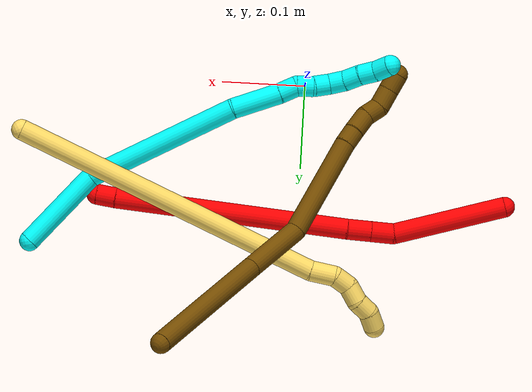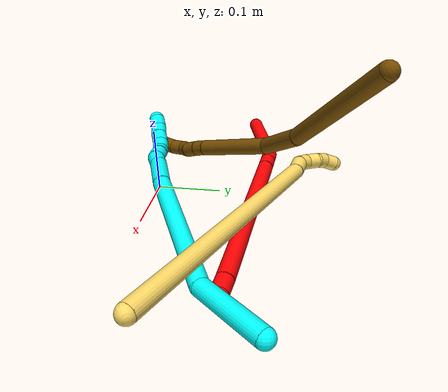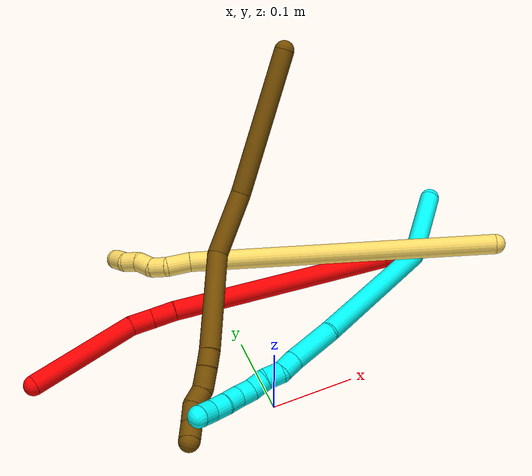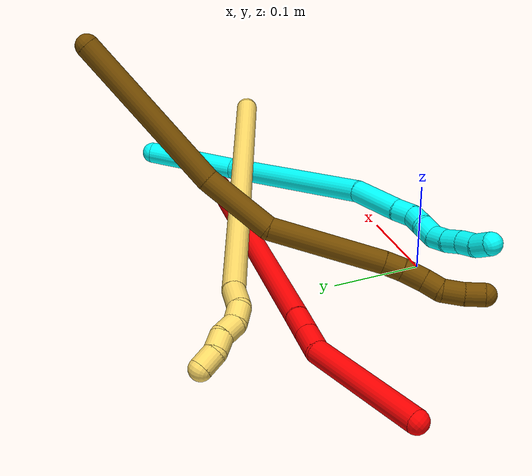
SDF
<sdf version="1.7">
 <world name="default">
  <model name="2">
   <static>0</static>
   <link name="2">
    <collision name="collision-cylinder-e_1_1_4">
     <pose>-0.010004 -0.00013 0.005987 0.021658 -1.03143 -0.012278</pose>
     <geometry><cylinder><radius>0.0125</radius><length>0.02332</length></cylinder></geometry>
     <surface>
      <friction><ode><mu>1.16</mu><mu2>1.16</mu2><slip1>0</slip1><slip2>0</slip2></ode></friction>
      <contact><ode><kp>1e+06</kp><kd>1</kd><max_vel>0</max_vel><min_depth>0.001</min_depth></ode></contact>
     </surface>
    </collision>
    <visual name="visual-cylinder-e_1_1_4">
     <pose>-0.010004 -0.00013 0.005987 0.021658 -1.03143 -0.012278</pose>
     <geometry><cylinder><radius>0.0125</radius><length>0.02332</length></cylinder></geometry>
     <material><ambient>1 0 0 1</ambient></material>
    </visual>
    <collision name="collision-cylinder-e_2_4_5">
     <pose>-0.135455 -0.000983 0.093216 0.008907 -0.957558 -0.004624</pose>
     <geometry><cylinder><radius>0.0125</radius><length>0.282338</length></cylinder></geometry>
     <surface>
      <friction><ode><mu>1.16</mu><mu2>1.16</mu2><slip1>0</slip1><slip2>0</slip2></ode></friction>
      <contact><ode><kp>1e+06</kp><kd>1</kd><max_vel>0</max_vel><min_depth>0.001</min_depth></ode></contact>
     </surface>
    </collision>
    <visual name="visual-cylinder-e_2_4_5">
     <pose>-0.135455 -0.000983 0.093216 0.008907 -0.957558 -0.004624</pose>
     <geometry><cylinder><radius>0.0125</radius><length>0.282338</length></cylinder></geometry>
     <material><ambient>1 0 0 1</ambient></material>
    </visual>
    <collision name="collision-cylinder-e_3_5_6">
     <pose>-0.261729 -0.002444 0.183689 0.079695 -0.863233 -0.036721</pose>
     <geometry><cylinder><radius>0.0125</radius><length>0.028495</length></cylinder></geometry>
     <surface>
      <friction><ode><mu>1.16</mu><mu2>1.16</mu2><slip1>0</slip1><slip2>0</slip2></ode></friction>
      <contact><ode><kp>1e+06</kp><kd>1</kd><max_vel>0</max_vel><min_depth>0.001</min_depth></ode></contact>
     </surface>
    </collision>
    <visual name="visual-cylinder-e_3_5_6">
     <pose>-0.261729 -0.002444 0.183689 0.079695 -0.863233 -0.036721</pose>
     <geometry><cylinder><radius>0.0125</radius><length>0.028495</length></cylinder></geometry>
     <material><ambient>1 0 0 1</ambient></material>
    </visual>
    <collision name="collision-cylinder-e_4_6_7">
     <pose>-0.283307 -0.003819 0.201951 0.070475 -0.870917 -0.032799</pose>
     <geometry><cylinder><radius>0.0125</radius><length>0.028109</length></cylinder></geometry>
     <surface>
      <friction><ode><mu>1.16</mu><mu2>1.16</mu2><slip1>0</slip1><slip2>0</slip2></ode></friction>
      <contact><ode><kp>1e+06</kp><kd>1</kd><max_vel>0</max_vel><min_depth>0.001</min_depth></ode></contact>
     </surface>
    </collision>
    <visual name="visual-cylinder-e_4_6_7">
     <pose>-0.283307 -0.003819 0.201951 0.070475 -0.870917 -0.032799</pose>
     <geometry><cylinder><radius>0.0125</radius><length>0.028109</length></cylinder></geometry>
     <material><ambient>1 0 0 1</ambient></material>
    </visual>
    <collision name="collision-cylinder-e_5_7_2">
     <pose>-0.336003 0.01205 0.26305 -0.306984 -0.654873 0.105001</pose>
     <geometry><cylinder><radius>0.0125</radius><length>0.137739</length></cylinder></geometry>
     <surface>
      <friction><ode><mu>1.16</mu><mu2>1.16</mu2><slip1>0</slip1><slip2>0</slip2></ode></friction>
      <contact><ode><kp>1e+06</kp><kd>1</kd><max_vel>0</max_vel><min_depth>0.001</min_depth></ode></contact>
     </surface>
    </collision>
    <visual name="visual-cylinder-e_5_7_2">
     <pose>-0.336003 0.01205 0.26305 -0.306984 -0.654873 0.105001</pose>
     <geometry><cylinder><radius>0.0125</radius><length>0.137739</length></cylinder></geometry>
     <material><ambient>1 0 0 1</ambient></material>
    </visual>
    <collision name="collision-sphere-2">
     <pose>-0.377948 0.028556 0.315118 0 -0 0</pose>
     <geometry><sphere><radius>0.0125</radius></sphere></geometry>
     <surface>
      <friction><ode><mu>1.16</mu><mu2>1.16</mu2><slip1>0</slip1><slip2>0</slip2></ode></friction>
      <contact><ode><kp>1e+06</kp><kd>1</kd><max_vel>0</max_vel><min_depth>0.001</min_depth></ode></contact>
     </surface>
    </collision>
    <visual name="visual-sphere-2">
     <pose>-0.377948 0.028556 0.315118 0 -0 0</pose>
     <geometry><sphere><radius>0.0125</radius></sphere></geometry>
     <material><ambient>1 0 0 1</ambient></material>
    </visual>
    <collision name="collision-sphere-7">
     <pose>-0.294057 -0.004456 0.210981 0 -0 0</pose>
     <geometry><sphere><radius>0.0125</radius></sphere></geometry>
     <surface>
      <friction><ode><mu>1.16</mu><mu2>1.16</mu2><slip1>0</slip1><slip2>0</slip2></ode></friction>
      <contact><ode><kp>1e+06</kp><kd>1</kd><max_vel>0</max_vel><min_depth>0.001</min_depth></ode></contact>
     </surface>
    </collision>
    <visual name="visual-sphere-7">
     <pose>-0.294057 -0.004456 0.210981 0 -0 0</pose>
     <geometry><sphere><radius>0.0125</radius></sphere></geometry>
     <material><ambient>1 0 0 1</ambient></material>
    </visual>
    <collision name="collision-sphere-6">
     <pose>-0.272556 -0.003181 0.192921 0 -0 0</pose>
     <geometry><sphere><radius>0.0125</radius></sphere></geometry>
     <surface>
      <friction><ode><mu>1.16</mu><mu2>1.16</mu2><slip1>0</slip1><slip2>0</slip2></ode></friction>
      <contact><ode><kp>1e+06</kp><kd>1</kd><max_vel>0</max_vel><min_depth>0.001</min_depth></ode></contact>
     </surface>
    </collision>
    <visual name="visual-sphere-6">
     <pose>-0.272556 -0.003181 0.192921 0 -0 0</pose>
     <geometry><sphere><radius>0.0125</radius></sphere></geometry>
     <material><ambient>1 0 0 1</ambient></material>
    </visual>
    <collision name="collision-sphere-5">
     <pose>-0.250901 -0.001707 0.174458 0 -0 0</pose>
     <geometry><sphere><radius>0.0125</radius></sphere></geometry>
     <surface>
      <friction><ode><mu>1.16</mu><mu2>1.16</mu2><slip1>0</slip1><slip2>0</slip2></ode></friction>
      <contact><ode><kp>1e+06</kp><kd>1</kd><max_vel>0</max_vel><min_depth>0.001</min_depth></ode></contact>
     </surface>
    </collision>
    <visual name="visual-sphere-5">
     <pose>-0.250901 -0.001707 0.174458 0 -0 0</pose>
     <geometry><sphere><radius>0.0125</radius></sphere></geometry>
     <material><ambient>1 0 0 1</ambient></material>
    </visual>
    <collision name="collision-sphere-1">
     <geometry><sphere><radius>0.0125</radius></sphere></geometry>
     <surface>
      <friction><ode><mu>1.16</mu><mu2>1.16</mu2><slip1>0</slip1><slip2>0</slip2></ode></friction>
      <contact><ode><kp>1e+06</kp><kd>1</kd><max_vel>0</max_vel><min_depth>0.001</min_depth></ode></contact>
     </surface>
    </collision>
    <visual name="visual-sphere-1">
     <geometry><sphere><radius>0.0125</radius></sphere></geometry>
     <material><ambient>1 0 0 1</ambient></material>
    </visual>
    <collision name="collision-sphere-4">
     <pose>-0.020009 -0.000259 0.011974 0 -0 0</pose>
     <geometry><sphere><radius>0.0125</radius></sphere></geometry>
     <surface>
      <friction><ode><mu>1.16</mu><mu2>1.16</mu2><slip1>0</slip1><slip2>0</slip2></ode></friction>
      <contact><ode><kp>1e+06</kp><kd>1</kd><max_vel>0</max_vel><min_depth>0.001</min_depth></ode></contact>
     </surface>
    </collision>
    <visual name="visual-sphere-4">
     <pose>-0.020009 -0.000259 0.011974 0 -0 0</pose>
     <geometry><sphere><radius>0.0125</radius></sphere></geometry>
     <material><ambient>1 0 0 1</ambient></material>
    </visual>
    <inertial>
     <pose>-0.200359 0.002404 0.147202 0 -0 0</pose>
     <mass>0.5</mass>
     <inertia>
      <ixx>0.00125</ixx>
      <ixy>0</ixy>
      <ixz>0</ixz>
      <iyy>0.002126</iyy>
      <iyz>0</iyz>
      <izz>0.001666</izz>
     </inertia>
    </inertial>
   </link>
   <pose>0.243999 0.14398 0.011484 2.22919 0.425446 -0.55017</pose>
  </model>
  <model name="3">
   <static>0</static>
   <link name="3">
    <collision name="collision-cylinder-e_1_1_4">
     <pose>-0.042104 -0.005809 -0.032391 2.96414 -0.907389 -2.7807</pose>
     <geometry><cylinder><radius>0.0125</radius><length>0.106877</length></cylinder></geometry>
     <surface>
      <friction><ode><mu>1.16</mu><mu2>1.16</mu2><slip1>0</slip1><slip2>0</slip2></ode></friction>
      <contact><ode><kp>1e+06</kp><kd>1</kd><max_vel>0</max_vel><min_depth>0.001</min_depth></ode></contact>
     </surface>
    </collision>
    <visual name="visual-cylinder-e_1_1_4">
     <pose>-0.042104 -0.005809 -0.032391 2.96414 -0.907389 -2.7807</pose>
     <geometry><cylinder><radius>0.0125</radius><length>0.106877</length></cylinder></geometry>
     <material><ambient>0.003922 1 0.996078 1</ambient></material>
    </visual>
    <collision name="collision-cylinder-e_2_4_5">
     <pose>-0.169185 -0.047009 -0.09228 2.23135 -1.08545 -1.77828</pose>
     <geometry><cylinder><radius>0.0125</radius><length>0.192143</length></cylinder></geometry>
     <surface>
      <friction><ode><mu>1.16</mu><mu2>1.16</mu2><slip1>0</slip1><slip2>0</slip2></ode></friction>
      <contact><ode><kp>1e+06</kp><kd>1</kd><max_vel>0</max_vel><min_depth>0.001</min_depth></ode></contact>
     </surface>
    </collision>
    <visual name="visual-cylinder-e_2_4_5">
     <pose>-0.169185 -0.047009 -0.09228 2.23135 -1.08545 -1.77828</pose>
     <geometry><cylinder><radius>0.0125</radius><length>0.192143</length></cylinder></geometry>
     <material><ambient>0.003922 1 0.996078 1</ambient></material>
    </visual>
    <collision name="collision-cylinder-e_3_5_6">
     <pose>-0.282561 -0.088749 -0.124495 2.20971 -1.2992 -1.97201</pose>
     <geometry><cylinder><radius>0.0125</radius><length>0.058959</length></cylinder></geometry>
     <surface>
      <friction><ode><mu>1.16</mu><mu2>1.16</mu2><slip1>0</slip1><slip2>0</slip2></ode></friction>
      <contact><ode><kp>1e+06</kp><kd>1</kd><max_vel>0</max_vel><min_depth>0.001</min_depth></ode></contact>
     </surface>
    </collision>
    <visual name="visual-cylinder-e_3_5_6">
     <pose>-0.282561 -0.088749 -0.124495 2.20971 -1.2992 -1.97201</pose>
     <geometry><cylinder><radius>0.0125</radius><length>0.058959</length></cylinder></geometry>
     <material><ambient>0.003922 1 0.996078 1</ambient></material>
    </visual>
    <collision name="collision-cylinder-e_4_6_7">
     <pose>-0.321306 -0.097543 -0.131995 2.4208 -1.22684 -2.15864</pose>
     <geometry><cylinder><radius>0.0125</radius><length>0.021981</length></cylinder></geometry>
     <surface>
      <friction><ode><mu>1.16</mu><mu2>1.16</mu2><slip1>0</slip1><slip2>0</slip2></ode></friction>
      <contact><ode><kp>1e+06</kp><kd>1</kd><max_vel>0</max_vel><min_depth>0.001</min_depth></ode></contact>
     </surface>
    </collision>
    <visual name="visual-cylinder-e_4_6_7">
     <pose>-0.321306 -0.097543 -0.131995 2.4208 -1.22684 -2.15864</pose>
     <geometry><cylinder><radius>0.0125</radius><length>0.021981</length></cylinder></geometry>
     <material><ambient>0.003922 1 0.996078 1</ambient></material>
    </visual>
    <collision name="collision-cylinder-e_5_7_8">
     <pose>-0.341333 -0.101812 -0.133043 0.809394 -1.31631 -0.639607</pose>
     <geometry><cylinder><radius>0.0125</radius><length>0.020004</length></cylinder></geometry>
     <surface>
      <friction><ode><mu>1.16</mu><mu2>1.16</mu2><slip1>0</slip1><slip2>0</slip2></ode></friction>
      <contact><ode><kp>1e+06</kp><kd>1</kd><max_vel>0</max_vel><min_depth>0.001</min_depth></ode></contact>
     </surface>
    </collision>
    <visual name="visual-cylinder-e_5_7_8">
     <pose>-0.341333 -0.101812 -0.133043 0.809394 -1.31631 -0.639607</pose>
     <geometry><cylinder><radius>0.0125</radius><length>0.020004</length></cylinder></geometry>
     <material><ambient>0.003922 1 0.996078 1</ambient></material>
    </visual>
    <collision name="collision-cylinder-e_6_8_9">
     <pose>-0.361018 -0.103352 -0.131238 -1.33773 -1.54178 1.30959</pose>
     <geometry><cylinder><radius>0.0125</radius><length>0.020021</length></cylinder></geometry>
     <surface>
      <friction><ode><mu>1.16</mu><mu2>1.16</mu2><slip1>0</slip1><slip2>0</slip2></ode></friction>
      <contact><ode><kp>1e+06</kp><kd>1</kd><max_vel>0</max_vel><min_depth>0.001</min_depth></ode></contact>
     </surface>
    </collision>
    <visual name="visual-cylinder-e_6_8_9">
     <pose>-0.361018 -0.103352 -0.131238 -1.33773 -1.54178 1.30959</pose>
     <geometry><cylinder><radius>0.0125</radius><length>0.020021</length></cylinder></geometry>
     <material><ambient>0.003922 1 0.996078 1</ambient></material>
    </visual>
    <collision name="collision-cylinder-e_7_9_10">
     <pose>-0.380119 -0.107195 -0.131782 1.7177 -1.14087 -1.27866</pose>
     <geometry><cylinder><radius>0.0125</radius><length>0.020009</length></cylinder></geometry>
     <surface>
      <friction><ode><mu>1.16</mu><mu2>1.16</mu2><slip1>0</slip1><slip2>0</slip2></ode></friction>
      <contact><ode><kp>1e+06</kp><kd>1</kd><max_vel>0</max_vel><min_depth>0.001</min_depth></ode></contact>
     </surface>
    </collision>
    <visual name="visual-cylinder-e_7_9_10">
     <pose>-0.380119 -0.107195 -0.131782 1.7177 -1.14087 -1.27866</pose>
     <geometry><cylinder><radius>0.0125</radius><length>0.020009</length></cylinder></geometry>
     <material><ambient>0.003922 1 0.996078 1</ambient></material>
    </visual>
    <collision name="collision-cylinder-e_8_10_11">
     <pose>-0.397585 -0.116427 -0.134353 1.93732 -0.991975 -1.33392</pose>
     <geometry><cylinder><radius>0.0125</radius><length>0.020003</length></cylinder></geometry>
     <surface>
      <friction><ode><mu>1.16</mu><mu2>1.16</mu2><slip1>0</slip1><slip2>0</slip2></ode></friction>
      <contact><ode><kp>1e+06</kp><kd>1</kd><max_vel>0</max_vel><min_depth>0.001</min_depth></ode></contact>
     </surface>
    </collision>
    <visual name="visual-cylinder-e_8_10_11">
     <pose>-0.397585 -0.116427 -0.134353 1.93732 -0.991975 -1.33392</pose>
     <geometry><cylinder><radius>0.0125</radius><length>0.020003</length></cylinder></geometry>
     <material><ambient>0.003922 1 0.996078 1</ambient></material>
    </visual>
    <collision name="collision-cylinder-e_9_11_12">
     <pose>-0.41484 -0.126064 -0.137097 1.74205 -1.09331 -1.25171</pose>
     <geometry><cylinder><radius>0.0125</radius><length>0.020001</length></cylinder></geometry>
     <surface>
      <friction><ode><mu>1.16</mu><mu2>1.16</mu2><slip1>0</slip1><slip2>0</slip2></ode></friction>
      <contact><ode><kp>1e+06</kp><kd>1</kd><max_vel>0</max_vel><min_depth>0.001</min_depth></ode></contact>
     </surface>
    </collision>
    <visual name="visual-cylinder-e_9_11_12">
     <pose>-0.41484 -0.126064 -0.137097 1.74205 -1.09331 -1.25171</pose>
     <geometry><cylinder><radius>0.0125</radius><length>0.020001</length></cylinder></geometry>
     <material><ambient>0.003922 1 0.996078 1</ambient></material>
    </visual>
    <collision name="collision-cylinder-e_10_12_2">
     <pose>-0.431039 -0.137089 -0.139948 1.87907 -0.820684 -1.0736</pose>
     <geometry><cylinder><radius>0.0125</radius><length>0.020002</length></cylinder></geometry>
     <surface>
      <friction><ode><mu>1.16</mu><mu2>1.16</mu2><slip1>0</slip1><slip2>0</slip2></ode></friction>
      <contact><ode><kp>1e+06</kp><kd>1</kd><max_vel>0</max_vel><min_depth>0.001</min_depth></ode></contact>
     </surface>
    </collision>
    <visual name="visual-cylinder-e_10_12_2">
     <pose>-0.431039 -0.137089 -0.139948 1.87907 -0.820684 -1.0736</pose>
     <geometry><cylinder><radius>0.0125</radius><length>0.020002</length></cylinder></geometry>
     <material><ambient>0.003922 1 0.996078 1</ambient></material>
    </visual>
    <collision name="collision-sphere-2">
     <pose>-0.438355 -0.143585 -0.142017 0 -0 0</pose>
     <geometry><sphere><radius>0.0125</radius></sphere></geometry>
     <surface>
      <friction><ode><mu>1.16</mu><mu2>1.16</mu2><slip1>0</slip1><slip2>0</slip2></ode></friction>
      <contact><ode><kp>1e+06</kp><kd>1</kd><max_vel>0</max_vel><min_depth>0.001</min_depth></ode></contact>
     </surface>
    </collision>
    <visual name="visual-sphere-2">
     <pose>-0.438355 -0.143585 -0.142017 0 -0 0</pose>
     <geometry><sphere><radius>0.0125</radius></sphere></geometry>
     <material><ambient>0.003922 1 0.996078 1</ambient></material>
    </visual>
    <collision name="collision-sphere-12">
     <pose>-0.423722 -0.130592 -0.13788 0 -0 0</pose>
     <geometry><sphere><radius>0.0125</radius></sphere></geometry>
     <surface>
      <friction><ode><mu>1.16</mu><mu2>1.16</mu2><slip1>0</slip1><slip2>0</slip2></ode></friction>
      <contact><ode><kp>1e+06</kp><kd>1</kd><max_vel>0</max_vel><min_depth>0.001</min_depth></ode></contact>
     </surface>
    </collision>
    <visual name="visual-sphere-12">
     <pose>-0.423722 -0.130592 -0.13788 0 -0 0</pose>
     <geometry><sphere><radius>0.0125</radius></sphere></geometry>
     <material><ambient>0.003922 1 0.996078 1</ambient></material>
    </visual>
    <collision name="collision-sphere-11">
     <pose>-0.405958 -0.121535 -0.136313 0 -0 0</pose>
     <geometry><sphere><radius>0.0125</radius></sphere></geometry>
     <surface>
      <friction><ode><mu>1.16</mu><mu2>1.16</mu2><slip1>0</slip1><slip2>0</slip2></ode></friction>
      <contact><ode><kp>1e+06</kp><kd>1</kd><max_vel>0</max_vel><min_depth>0.001</min_depth></ode></contact>
     </surface>
    </collision>
    <visual name="visual-sphere-11">
     <pose>-0.405958 -0.121535 -0.136313 0 -0 0</pose>
     <geometry><sphere><radius>0.0125</radius></sphere></geometry>
     <material><ambient>0.003922 1 0.996078 1</ambient></material>
    </visual>
    <collision name="collision-sphere-10">
     <pose>-0.389213 -0.11132 -0.132392 0 -0 0</pose>
     <geometry><sphere><radius>0.0125</radius></sphere></geometry>
     <surface>
      <friction><ode><mu>1.16</mu><mu2>1.16</mu2><slip1>0</slip1><slip2>0</slip2></ode></friction>
      <contact><ode><kp>1e+06</kp><kd>1</kd><max_vel>0</max_vel><min_depth>0.001</min_depth></ode></contact>
     </surface>
    </collision>
    <visual name="visual-sphere-10">
     <pose>-0.389213 -0.11132 -0.132392 0 -0 0</pose>
     <geometry><sphere><radius>0.0125</radius></sphere></geometry>
     <material><ambient>0.003922 1 0.996078 1</ambient></material>
    </visual>
    <collision name="collision-sphere-9">
     <pose>-0.371024 -0.103069 -0.131171 0 -0 0</pose>
     <geometry><sphere><radius>0.0125</radius></sphere></geometry>
     <surface>
      <friction><ode><mu>1.16</mu><mu2>1.16</mu2><slip1>0</slip1><slip2>0</slip2></ode></friction>
      <contact><ode><kp>1e+06</kp><kd>1</kd><max_vel>0</max_vel><min_depth>0.001</min_depth></ode></contact>
     </surface>
    </collision>
    <visual name="visual-sphere-9">
     <pose>-0.371024 -0.103069 -0.131171 0 -0 0</pose>
     <geometry><sphere><radius>0.0125</radius></sphere></geometry>
     <material><ambient>0.003922 1 0.996078 1</ambient></material>
    </visual>
    <collision name="collision-sphere-4">
     <pose>-0.084208 -0.011618 -0.064782 0 -0 0</pose>
     <geometry><sphere><radius>0.0125</radius></sphere></geometry>
     <surface>
      <friction><ode><mu>1.16</mu><mu2>1.16</mu2><slip1>0</slip1><slip2>0</slip2></ode></friction>
      <contact><ode><kp>1e+06</kp><kd>1</kd><max_vel>0</max_vel><min_depth>0.001</min_depth></ode></contact>
     </surface>
    </collision>
    <visual name="visual-sphere-4">
     <pose>-0.084208 -0.011618 -0.064782 0 -0 0</pose>
     <geometry><sphere><radius>0.0125</radius></sphere></geometry>
     <material><ambient>0.003922 1 0.996078 1</ambient></material>
    </visual>
    <collision name="collision-sphere-1">
     <geometry><sphere><radius>0.0125</radius></sphere></geometry>
     <surface>
      <friction><ode><mu>1.16</mu><mu2>1.16</mu2><slip1>0</slip1><slip2>0</slip2></ode></friction>
      <contact><ode><kp>1e+06</kp><kd>1</kd><max_vel>0</max_vel><min_depth>0.001</min_depth></ode></contact>
     </surface>
    </collision>
    <visual name="visual-sphere-1">
     <geometry><sphere><radius>0.0125</radius></sphere></geometry>
     <material><ambient>0.003922 1 0.996078 1</ambient></material>
    </visual>
    <collision name="collision-sphere-8">
     <pose>-0.351012 -0.103635 -0.131305 0 -0 0</pose>
     <geometry><sphere><radius>0.0125</radius></sphere></geometry>
     <surface>
      <friction><ode><mu>1.16</mu><mu2>1.16</mu2><slip1>0</slip1><slip2>0</slip2></ode></friction>
      <contact><ode><kp>1e+06</kp><kd>1</kd><max_vel>0</max_vel><min_depth>0.001</min_depth></ode></contact>
     </surface>
    </collision>
    <visual name="visual-sphere-8">
     <pose>-0.351012 -0.103635 -0.131305 0 -0 0</pose>
     <geometry><sphere><radius>0.0125</radius></sphere></geometry>
     <material><ambient>0.003922 1 0.996078 1</ambient></material>
    </visual>
    <collision name="collision-sphere-5">
     <pose>-0.254161 -0.0824 -0.119779 0 -0 0</pose>
     <geometry><sphere><radius>0.0125</radius></sphere></geometry>
     <surface>
      <friction><ode><mu>1.16</mu><mu2>1.16</mu2><slip1>0</slip1><slip2>0</slip2></ode></friction>
      <contact><ode><kp>1e+06</kp><kd>1</kd><max_vel>0</max_vel><min_depth>0.001</min_depth></ode></contact>
     </surface>
    </collision>
    <visual name="visual-sphere-5">
     <pose>-0.254161 -0.0824 -0.119779 0 -0 0</pose>
     <geometry><sphere><radius>0.0125</radius></sphere></geometry>
     <material><ambient>0.003922 1 0.996078 1</ambient></material>
    </visual>
    <collision name="collision-sphere-6">
     <pose>-0.31096 -0.095097 -0.129211 0 -0 0</pose>
     <geometry><sphere><radius>0.0125</radius></sphere></geometry>
     <surface>
      <friction><ode><mu>1.16</mu><mu2>1.16</mu2><slip1>0</slip1><slip2>0</slip2></ode></friction>
      <contact><ode><kp>1e+06</kp><kd>1</kd><max_vel>0</max_vel><min_depth>0.001</min_depth></ode></contact>
     </surface>
    </collision>
    <visual name="visual-sphere-6">
     <pose>-0.31096 -0.095097 -0.129211 0 -0 0</pose>
     <geometry><sphere><radius>0.0125</radius></sphere></geometry>
     <material><ambient>0.003922 1 0.996078 1</ambient></material>
    </visual>
    <collision name="collision-sphere-7">
     <pose>-0.331653 -0.099989 -0.13478 0 -0 0</pose>
     <geometry><sphere><radius>0.0125</radius></sphere></geometry>
     <surface>
      <friction><ode><mu>1.16</mu><mu2>1.16</mu2><slip1>0</slip1><slip2>0</slip2></ode></friction>
      <contact><ode><kp>1e+06</kp><kd>1</kd><max_vel>0</max_vel><min_depth>0.001</min_depth></ode></contact>
     </surface>
    </collision>
    <visual name="visual-sphere-7">
     <pose>-0.331653 -0.099989 -0.13478 0 -0 0</pose>
     <geometry><sphere><radius>0.0125</radius></sphere></geometry>
     <material><ambient>0.003922 1 0.996078 1</ambient></material>
    </visual>
    <inertial>
     <pose>-0.214526 -0.061746 -0.095178 0 -0 0</pose>
     <mass>0.5</mass>
     <inertia>
      <ixx>-0.000458</ixx>
      <ixy>0</ixy>
      <ixz>0</ixz>
      <iyy>0.000298</iyy>
      <iyz>0</iyz>
      <izz>0.00087</izz>
     </inertia>
    </inertial>
   </link>
   <pose>0.320954 0.204448 0.032725 -1.60427 -0.226371 0.213714</pose>
  </model>
  <model name="5">
   <static>0</static>
   <link name="5">
    <collision name="collision-cylinder-e_1_1_4">
     <pose>-0.092799 0.110822 0.127676 -0.714844 -0.501995 0.190933</pose>
     <geometry><cylinder><radius>0.0125</radius><length>0.385716</length></cylinder></geometry>
     <surface>
      <friction><ode><mu>1.16</mu><mu2>1.16</mu2><slip1>0</slip1><slip2>0</slip2></ode></friction>
      <contact><ode><kp>1e+06</kp><kd>1</kd><max_vel>0</max_vel><min_depth>0.001</min_depth></ode></contact>
     </surface>
    </collision>
    <visual name="visual-cylinder-e_1_1_4">
     <pose>-0.092799 0.110822 0.127676 -0.714844 -0.501995 0.190933</pose>
     <geometry><cylinder><radius>0.0125</radius><length>0.385716</length></cylinder></geometry>
     <material><ambient>1 0.858824 0.4 1</ambient></material>
    </visual>
    <collision name="collision-cylinder-e_2_4_5">
     <pose>-0.190475 0.228891 0.267523 -0.537141 -0.331614 0.092047</pose>
     <geometry><cylinder><radius>0.0125</radius><length>0.029963</length></cylinder></geometry>
     <surface>
      <friction><ode><mu>1.16</mu><mu2>1.16</mu2><slip1>0</slip1><slip2>0</slip2></ode></friction>
      <contact><ode><kp>1e+06</kp><kd>1</kd><max_vel>0</max_vel><min_depth>0.001</min_depth></ode></contact>
     </surface>
    </collision>
    <visual name="visual-cylinder-e_2_4_5">
     <pose>-0.190475 0.228891 0.267523 -0.537141 -0.331614 0.092047</pose>
     <geometry><cylinder><radius>0.0125</radius><length>0.029963</length></cylinder></geometry>
     <material><ambient>1 0.858824 0.4 1</ambient></material>
    </visual>
    <collision name="collision-cylinder-e_3_5_6">
     <pose>-0.202631 0.24143 0.285358 -0.751297 -0.753987 0.309789</pose>
     <geometry><cylinder><radius>0.0125</radius><length>0.021267</length></cylinder></geometry>
     <surface>
      <friction><ode><mu>1.16</mu><mu2>1.16</mu2><slip1>0</slip1><slip2>0</slip2></ode></friction>
      <contact><ode><kp>1e+06</kp><kd>1</kd><max_vel>0</max_vel><min_depth>0.001</min_depth></ode></contact>
     </surface>
    </collision>
    <visual name="visual-cylinder-e_3_5_6">
     <pose>-0.202631 0.24143 0.285358 -0.751297 -0.753987 0.309789</pose>
     <geometry><cylinder><radius>0.0125</radius><length>0.021267</length></cylinder></geometry>
     <material><ambient>1 0.858824 0.4 1</ambient></material>
    </visual>
    <collision name="collision-cylinder-e_4_6_7">
     <pose>-0.217618 0.254072 0.292329 -1.39496 -0.801355 0.682183</pose>
     <geometry><cylinder><radius>0.0125</radius><length>0.021462</length></cylinder></geometry>
     <surface>
      <friction><ode><mu>1.16</mu><mu2>1.16</mu2><slip1>0</slip1><slip2>0</slip2></ode></friction>
      <contact><ode><kp>1e+06</kp><kd>1</kd><max_vel>0</max_vel><min_depth>0.001</min_depth></ode></contact>
     </surface>
    </collision>
    <visual name="visual-cylinder-e_4_6_7">
     <pose>-0.217618 0.254072 0.292329 -1.39496 -0.801355 0.682183</pose>
     <geometry><cylinder><radius>0.0125</radius><length>0.021462</length></cylinder></geometry>
     <material><ambient>1 0.858824 0.4 1</ambient></material>
    </visual>
    <collision name="collision-cylinder-e_5_7_8">
     <pose>-0.233106 0.266149 0.297992 -0.825956 -0.880274 0.407004</pose>
     <geometry><cylinder><radius>0.0125</radius><length>0.020183</length></cylinder></geometry>
     <surface>
      <friction><ode><mu>1.16</mu><mu2>1.16</mu2><slip1>0</slip1><slip2>0</slip2></ode></friction>
      <contact><ode><kp>1e+06</kp><kd>1</kd><max_vel>0</max_vel><min_depth>0.001</min_depth></ode></contact>
     </surface>
    </collision>
    <visual name="visual-cylinder-e_5_7_8">
     <pose>-0.233106 0.266149 0.297992 -0.825956 -0.880274 0.407004</pose>
     <geometry><cylinder><radius>0.0125</radius><length>0.020183</length></cylinder></geometry>
     <material><ambient>1 0.858824 0.4 1</ambient></material>
    </visual>
    <collision name="collision-cylinder-e_6_8_2">
     <pose>-0.250687 0.275167 0.302666 -1.49721 -1.15694 1.09055</pose>
     <geometry><cylinder><radius>0.0125</radius><length>0.021409</length></cylinder></geometry>
     <surface>
      <friction><ode><mu>1.16</mu><mu2>1.16</mu2><slip1>0</slip1><slip2>0</slip2></ode></friction>
      <contact><ode><kp>1e+06</kp><kd>1</kd><max_vel>0</max_vel><min_depth>0.001</min_depth></ode></contact>
     </surface>
    </collision>
    <visual name="visual-cylinder-e_6_8_2">
     <pose>-0.250687 0.275167 0.302666 -1.49721 -1.15694 1.09055</pose>
     <geometry><cylinder><radius>0.0125</radius><length>0.021409</length></cylinder></geometry>
     <material><ambient>1 0.858824 0.4 1</ambient></material>
    </visual>
    <collision name="collision-sphere-2">
     <pose>-0.260488 0.27946 0.302982 0 -0 0</pose>
     <geometry><sphere><radius>0.0125</radius></sphere></geometry>
     <surface>
      <friction><ode><mu>1.16</mu><mu2>1.16</mu2><slip1>0</slip1><slip2>0</slip2></ode></friction>
      <contact><ode><kp>1e+06</kp><kd>1</kd><max_vel>0</max_vel><min_depth>0.001</min_depth></ode></contact>
     </surface>
    </collision>
    <visual name="visual-sphere-2">
     <pose>-0.260488 0.27946 0.302982 0 -0 0</pose>
     <geometry><sphere><radius>0.0125</radius></sphere></geometry>
     <material><ambient>1 0.858824 0.4 1</ambient></material>
    </visual>
    <collision name="collision-sphere-4">
     <pose>-0.185597 0.221643 0.255353 0 -0 0</pose>
     <geometry><sphere><radius>0.0125</radius></sphere></geometry>
     <surface>
      <friction><ode><mu>1.16</mu><mu2>1.16</mu2><slip1>0</slip1><slip2>0</slip2></ode></friction>
      <contact><ode><kp>1e+06</kp><kd>1</kd><max_vel>0</max_vel><min_depth>0.001</min_depth></ode></contact>
     </surface>
    </collision>
    <visual name="visual-sphere-4">
     <pose>-0.185597 0.221643 0.255353 0 -0 0</pose>
     <geometry><sphere><radius>0.0125</radius></sphere></geometry>
     <material><ambient>1 0.858824 0.4 1</ambient></material>
    </visual>
    <collision name="collision-sphere-1">
     <geometry><sphere><radius>0.0125</radius></sphere></geometry>
     <surface>
      <friction><ode><mu>1.16</mu><mu2>1.16</mu2><slip1>0</slip1><slip2>0</slip2></ode></friction>
      <contact><ode><kp>1e+06</kp><kd>1</kd><max_vel>0</max_vel><min_depth>0.001</min_depth></ode></contact>
     </surface>
    </collision>
    <visual name="visual-sphere-1">
     <geometry><sphere><radius>0.0125</radius></sphere></geometry>
     <material><ambient>1 0.858824 0.4 1</ambient></material>
    </visual>
    <collision name="collision-sphere-8">
     <pose>-0.240886 0.270874 0.302349 0 -0 0</pose>
     <geometry><sphere><radius>0.0125</radius></sphere></geometry>
     <surface>
      <friction><ode><mu>1.16</mu><mu2>1.16</mu2><slip1>0</slip1><slip2>0</slip2></ode></friction>
      <contact><ode><kp>1e+06</kp><kd>1</kd><max_vel>0</max_vel><min_depth>0.001</min_depth></ode></contact>
     </surface>
    </collision>
    <visual name="visual-sphere-8">
     <pose>-0.240886 0.270874 0.302349 0 -0 0</pose>
     <geometry><sphere><radius>0.0125</radius></sphere></geometry>
     <material><ambient>1 0.858824 0.4 1</ambient></material>
    </visual>
    <collision name="collision-sphere-5">
     <pose>-0.195352 0.236139 0.279693 0 -0 0</pose>
     <geometry><sphere><radius>0.0125</radius></sphere></geometry>
     <surface>
      <friction><ode><mu>1.16</mu><mu2>1.16</mu2><slip1>0</slip1><slip2>0</slip2></ode></friction>
      <contact><ode><kp>1e+06</kp><kd>1</kd><max_vel>0</max_vel><min_depth>0.001</min_depth></ode></contact>
     </surface>
    </collision>
    <visual name="visual-sphere-5">
     <pose>-0.195352 0.236139 0.279693 0 -0 0</pose>
     <geometry><sphere><radius>0.0125</radius></sphere></geometry>
     <material><ambient>1 0.858824 0.4 1</ambient></material>
    </visual>
    <collision name="collision-sphere-6">
     <pose>-0.20991 0.246721 0.291023 0 -0 0</pose>
     <geometry><sphere><radius>0.0125</radius></sphere></geometry>
     <surface>
      <friction><ode><mu>1.16</mu><mu2>1.16</mu2><slip1>0</slip1><slip2>0</slip2></ode></friction>
      <contact><ode><kp>1e+06</kp><kd>1</kd><max_vel>0</max_vel><min_depth>0.001</min_depth></ode></contact>
     </surface>
    </collision>
    <visual name="visual-sphere-6">
     <pose>-0.20991 0.246721 0.291023 0 -0 0</pose>
     <geometry><sphere><radius>0.0125</radius></sphere></geometry>
     <material><ambient>1 0.858824 0.4 1</ambient></material>
    </visual>
    <collision name="collision-sphere-7">
     <pose>-0.225327 0.261423 0.293635 0 -0 0</pose>
     <geometry><sphere><radius>0.0125</radius></sphere></geometry>
     <surface>
      <friction><ode><mu>1.16</mu><mu2>1.16</mu2><slip1>0</slip1><slip2>0</slip2></ode></friction>
      <contact><ode><kp>1e+06</kp><kd>1</kd><max_vel>0</max_vel><min_depth>0.001</min_depth></ode></contact>
     </surface>
    </collision>
    <visual name="visual-sphere-7">
     <pose>-0.225327 0.261423 0.293635 0 -0 0</pose>
     <geometry><sphere><radius>0.0125</radius></sphere></geometry>
     <material><ambient>1 0.858824 0.4 1</ambient></material>
    </visual>
    <inertial>
     <pose>-0.121105 0.142908 0.164199 0 -0 0</pose>
     <mass>0.5</mass>
     <inertia>
      <ixx>0.004915</ixx>
      <ixy>0</ixy>
      <ixz>0</ixz>
      <iyy>0.004674</iyy>
      <iyz>0</iyz>
      <izz>-0.000424</izz>
     </inertia>
    </inertial>
   </link>
   <pose>0.335587 0.07219 0.064663 1.78598 -0.834646 -1.28257</pose>
  </model>
  <model name="12">
   <static>0</static>
   <link name="12">
    <collision name="collision-cylinder-e_1_1_4">
     <pose>-0.001103 0.004201 -0.091505 -3.09571 -0.012044 0.51335</pose>
     <geometry><cylinder><radius>0.0125</radius><length>0.183217</length></cylinder></geometry>
     <surface>
      <friction><ode><mu>1.16</mu><mu2>1.16</mu2><slip1>0</slip1><slip2>0</slip2></ode></friction>
      <contact><ode><kp>1e+06</kp><kd>1</kd><max_vel>0</max_vel><min_depth>0.001</min_depth></ode></contact>
     </surface>
    </collision>
    <visual name="visual-cylinder-e_1_1_4">
     <pose>-0.001103 0.004201 -0.091505 -3.09571 -0.012044 0.51335</pose>
     <geometry><cylinder><radius>0.0125</radius><length>0.183217</length></cylinder></geometry>
     <material><ambient>0.466667 0.301961 0 1</ambient></material>
    </visual>
    <collision name="collision-cylinder-e_2_4_5">
     <pose>-0.008485 0.004101 -0.222254 3.03241 -0.157716 -1.93159</pose>
     <geometry><cylinder><radius>0.0125</radius><length>0.079949</length></cylinder></geometry>
     <surface>
      <friction><ode><mu>1.16</mu><mu2>1.16</mu2><slip1>0</slip1><slip2>0</slip2></ode></friction>
      <contact><ode><kp>1e+06</kp><kd>1</kd><max_vel>0</max_vel><min_depth>0.001</min_depth></ode></contact>
     </surface>
    </collision>
    <visual name="visual-cylinder-e_2_4_5">
     <pose>-0.008485 0.004101 -0.222254 3.03241 -0.157716 -1.93159</pose>
     <geometry><cylinder><radius>0.0125</radius><length>0.079949</length></cylinder></geometry>
     <material><ambient>0.466667 0.301961 0 1</ambient></material>
    </visual>
    <collision name="collision-cylinder-e_3_5_6">
     <pose>-0.016895 -0.030281 -0.315929 2.63674 -0.034255 -0.132626</pose>
     <geometry><cylinder><radius>0.0125</radius><length>0.124453</length></cylinder></geometry>
     <surface>
      <friction><ode><mu>1.16</mu><mu2>1.16</mu2><slip1>0</slip1><slip2>0</slip2></ode></friction>
      <contact><ode><kp>1e+06</kp><kd>1</kd><max_vel>0</max_vel><min_depth>0.001</min_depth></ode></contact>
     </surface>
    </collision>
    <visual name="visual-cylinder-e_3_5_6">
     <pose>-0.016895 -0.030281 -0.315929 2.63674 -0.034255 -0.132626</pose>
     <geometry><cylinder><radius>0.0125</radius><length>0.124453</length></cylinder></geometry>
     <material><ambient>0.466667 0.301961 0 1</ambient></material>
    </visual>
    <collision name="collision-cylinder-e_4_6_7">
     <pose>-0.019899 -0.06454 -0.379723 2.7218 -0.084977 -0.393956</pose>
     <geometry><cylinder><radius>0.0125</radius><length>0.020579</length></cylinder></geometry>
     <surface>
      <friction><ode><mu>1.16</mu><mu2>1.16</mu2><slip1>0</slip1><slip2>0</slip2></ode></friction>
      <contact><ode><kp>1e+06</kp><kd>1</kd><max_vel>0</max_vel><min_depth>0.001</min_depth></ode></contact>
     </surface>
    </collision>
    <visual name="visual-cylinder-e_4_6_7">
     <pose>-0.019899 -0.06454 -0.379723 2.7218 -0.084977 -0.393956</pose>
     <geometry><cylinder><radius>0.0125</radius><length>0.020579</length></cylinder></geometry>
     <material><ambient>0.466667 0.301961 0 1</ambient></material>
    </visual>
    <collision name="collision-cylinder-e_5_7_8">
     <pose>-0.021624 -0.072919 -0.401172 2.8071 -0.066466 -0.388872</pose>
     <geometry><cylinder><radius>0.0125</radius><length>0.025649</length></cylinder></geometry>
     <surface>
      <friction><ode><mu>1.16</mu><mu2>1.16</mu2><slip1>0</slip1><slip2>0</slip2></ode></friction>
      <contact><ode><kp>1e+06</kp><kd>1</kd><max_vel>0</max_vel><min_depth>0.001</min_depth></ode></contact>
     </surface>
    </collision>
    <visual name="visual-cylinder-e_5_7_8">
     <pose>-0.021624 -0.072919 -0.401172 2.8071 -0.066466 -0.388872</pose>
     <geometry><cylinder><radius>0.0125</radius><length>0.025649</length></cylinder></geometry>
     <material><ambient>0.466667 0.301961 0 1</ambient></material>
    </visual>
    <collision name="collision-cylinder-e_6_8_9">
     <pose>-0.026562 -0.079295 -0.422431 2.90878 -0.409012 -2.11484</pose>
     <geometry><cylinder><radius>0.0125</radius><length>0.020547</length></cylinder></geometry>
     <surface>
      <friction><ode><mu>1.16</mu><mu2>1.16</mu2><slip1>0</slip1><slip2>0</slip2></ode></friction>
      <contact><ode><kp>1e+06</kp><kd>1</kd><max_vel>0</max_vel><min_depth>0.001</min_depth></ode></contact>
     </surface>
    </collision>
    <visual name="visual-cylinder-e_6_8_9">
     <pose>-0.026562 -0.079295 -0.422431 2.90878 -0.409012 -2.11484</pose>
     <geometry><cylinder><radius>0.0125</radius><length>0.020547</length></cylinder></geometry>
     <material><ambient>0.466667 0.301961 0 1</ambient></material>
    </visual>
    <collision name="collision-cylinder-e_7_9_10">
     <pose>-0.031867 -0.088385 -0.441187 2.51658 -0.102771 -0.315716</pose>
     <geometry><cylinder><radius>0.0125</radius><length>0.023763</length></cylinder></geometry>
     <surface>
      <friction><ode><mu>1.16</mu><mu2>1.16</mu2><slip1>0</slip1><slip2>0</slip2></ode></friction>
      <contact><ode><kp>1e+06</kp><kd>1</kd><max_vel>0</max_vel><min_depth>0.001</min_depth></ode></contact>
     </surface>
    </collision>
    <visual name="visual-cylinder-e_7_9_10">
     <pose>-0.031867 -0.088385 -0.441187 2.51658 -0.102771 -0.315716</pose>
     <geometry><cylinder><radius>0.0125</radius><length>0.023763</length></cylinder></geometry>
     <material><ambient>0.466667 0.301961 0 1</ambient></material>
    </visual>
    <collision name="collision-cylinder-e_8_10_2">
     <pose>-0.035176 -0.102721 -0.458507 2.37691 -0.192602 -0.471511</pose>
     <geometry><cylinder><radius>0.0125</radius><length>0.021843</length></cylinder></geometry>
     <surface>
      <friction><ode><mu>1.16</mu><mu2>1.16</mu2><slip1>0</slip1><slip2>0</slip2></ode></friction>
      <contact><ode><kp>1e+06</kp><kd>1</kd><max_vel>0</max_vel><min_depth>0.001</min_depth></ode></contact>
     </surface>
    </collision>
    <visual name="visual-cylinder-e_8_10_2">
     <pose>-0.035176 -0.102721 -0.458507 2.37691 -0.192602 -0.471511</pose>
     <geometry><cylinder><radius>0.0125</radius><length>0.021843</length></cylinder></geometry>
     <material><ambient>0.466667 0.301961 0 1</ambient></material>
    </visual>
    <collision name="collision-sphere-2">
     <pose>-0.037267 -0.110142 -0.466242 0 -0 0</pose>
     <geometry><sphere><radius>0.0125</radius></sphere></geometry>
     <surface>
      <friction><ode><mu>1.16</mu><mu2>1.16</mu2><slip1>0</slip1><slip2>0</slip2></ode></friction>
      <contact><ode><kp>1e+06</kp><kd>1</kd><max_vel>0</max_vel><min_depth>0.001</min_depth></ode></contact>
     </surface>
    </collision>
    <visual name="visual-sphere-2">
     <pose>-0.037267 -0.110142 -0.466242 0 -0 0</pose>
     <geometry><sphere><radius>0.0125</radius></sphere></geometry>
     <material><ambient>0.466667 0.301961 0 1</ambient></material>
    </visual>
    <collision name="collision-sphere-10">
     <pose>-0.033086 -0.0953 -0.450772 0 -0 0</pose>
     <geometry><sphere><radius>0.0125</radius></sphere></geometry>
     <surface>
      <friction><ode><mu>1.16</mu><mu2>1.16</mu2><slip1>0</slip1><slip2>0</slip2></ode></friction>
      <contact><ode><kp>1e+06</kp><kd>1</kd><max_vel>0</max_vel><min_depth>0.001</min_depth></ode></contact>
     </surface>
    </collision>
    <visual name="visual-sphere-10">
     <pose>-0.033086 -0.0953 -0.450772 0 -0 0</pose>
     <geometry><sphere><radius>0.0125</radius></sphere></geometry>
     <material><ambient>0.466667 0.301961 0 1</ambient></material>
    </visual>
    <collision name="collision-sphere-9">
     <pose>-0.030648 -0.081469 -0.431602 0 -0 0</pose>
     <geometry><sphere><radius>0.0125</radius></sphere></geometry>
     <surface>
      <friction><ode><mu>1.16</mu><mu2>1.16</mu2><slip1>0</slip1><slip2>0</slip2></ode></friction>
      <contact><ode><kp>1e+06</kp><kd>1</kd><max_vel>0</max_vel><min_depth>0.001</min_depth></ode></contact>
     </surface>
    </collision>
    <visual name="visual-sphere-9">
     <pose>-0.030648 -0.081469 -0.431602 0 -0 0</pose>
     <geometry><sphere><radius>0.0125</radius></sphere></geometry>
     <material><ambient>0.466667 0.301961 0 1</ambient></material>
    </visual>
    <collision name="collision-sphere-4">
     <pose>-0.002207 0.008403 -0.183011 0 -0 0</pose>
     <geometry><sphere><radius>0.0125</radius></sphere></geometry>
     <surface>
      <friction><ode><mu>1.16</mu><mu2>1.16</mu2><slip1>0</slip1><slip2>0</slip2></ode></friction>
      <contact><ode><kp>1e+06</kp><kd>1</kd><max_vel>0</max_vel><min_depth>0.001</min_depth></ode></contact>
     </surface>
    </collision>
    <visual name="visual-sphere-4">
     <pose>-0.002207 0.008403 -0.183011 0 -0 0</pose>
     <geometry><sphere><radius>0.0125</radius></sphere></geometry>
     <material><ambient>0.466667 0.301961 0 1</ambient></material>
    </visual>
    <collision name="collision-sphere-1">
     <geometry><sphere><radius>0.0125</radius></sphere></geometry>
     <surface>
      <friction><ode><mu>1.16</mu><mu2>1.16</mu2><slip1>0</slip1><slip2>0</slip2></ode></friction>
      <contact><ode><kp>1e+06</kp><kd>1</kd><max_vel>0</max_vel><min_depth>0.001</min_depth></ode></contact>
     </surface>
    </collision>
    <visual name="visual-sphere-1">
     <geometry><sphere><radius>0.0125</radius></sphere></geometry>
     <material><ambient>0.466667 0.301961 0 1</ambient></material>
    </visual>
    <collision name="collision-sphere-8">
     <pose>-0.022476 -0.07712 -0.413259 0 -0 0</pose>
     <geometry><sphere><radius>0.0125</radius></sphere></geometry>
     <surface>
      <friction><ode><mu>1.16</mu><mu2>1.16</mu2><slip1>0</slip1><slip2>0</slip2></ode></friction>
      <contact><ode><kp>1e+06</kp><kd>1</kd><max_vel>0</max_vel><min_depth>0.001</min_depth></ode></contact>
     </surface>
    </collision>
    <visual name="visual-sphere-8">
     <pose>-0.022476 -0.07712 -0.413259 0 -0 0</pose>
     <geometry><sphere><radius>0.0125</radius></sphere></geometry>
     <material><ambient>0.466667 0.301961 0 1</ambient></material>
    </visual>
    <collision name="collision-sphere-5">
     <pose>-0.014764 -0.000201 -0.261498 0 -0 0</pose>
     <geometry><sphere><radius>0.0125</radius></sphere></geometry>
     <surface>
      <friction><ode><mu>1.16</mu><mu2>1.16</mu2><slip1>0</slip1><slip2>0</slip2></ode></friction>
      <contact><ode><kp>1e+06</kp><kd>1</kd><max_vel>0</max_vel><min_depth>0.001</min_depth></ode></contact>
     </surface>
    </collision>
    <visual name="visual-sphere-5">
     <pose>-0.014764 -0.000201 -0.261498 0 -0 0</pose>
     <geometry><sphere><radius>0.0125</radius></sphere></geometry>
     <material><ambient>0.466667 0.301961 0 1</ambient></material>
    </visual>
    <collision name="collision-sphere-6">
     <pose>-0.019026 -0.060361 -0.37036 0 -0 0</pose>
     <geometry><sphere><radius>0.0125</radius></sphere></geometry>
     <surface>
      <friction><ode><mu>1.16</mu><mu2>1.16</mu2><slip1>0</slip1><slip2>0</slip2></ode></friction>
      <contact><ode><kp>1e+06</kp><kd>1</kd><max_vel>0</max_vel><min_depth>0.001</min_depth></ode></contact>
     </surface>
    </collision>
    <visual name="visual-sphere-6">
     <pose>-0.019026 -0.060361 -0.37036 0 -0 0</pose>
     <geometry><sphere><radius>0.0125</radius></sphere></geometry>
     <material><ambient>0.466667 0.301961 0 1</ambient></material>
    </visual>
    <collision name="collision-sphere-7">
     <pose>-0.020773 -0.068718 -0.389085 0 -0 0</pose>
     <geometry><sphere><radius>0.0125</radius></sphere></geometry>
     <surface>
      <friction><ode><mu>1.16</mu><mu2>1.16</mu2><slip1>0</slip1><slip2>0</slip2></ode></friction>
      <contact><ode><kp>1e+06</kp><kd>1</kd><max_vel>0</max_vel><min_depth>0.001</min_depth></ode></contact>
     </surface>
    </collision>
    <visual name="visual-sphere-7">
     <pose>-0.020773 -0.068718 -0.389085 0 -0 0</pose>
     <geometry><sphere><radius>0.0125</radius></sphere></geometry>
     <material><ambient>0.466667 0.301961 0 1</ambient></material>
    </visual>
    <inertial>
     <pose>-0.012037 -0.023685 -0.242271 0 -0 0</pose>
     <mass>0.5</mass>
     <inertia>
      <ixx>0.000791</ixx>
      <ixy>0</ixy>
      <ixz>0</ixz>
      <iyy>-0.000405</iyy>
      <iyz>0</iyz>
      <izz>4.9e-05</izz>
     </inertia>
    </inertial>
   </link>
   <pose>0.150846 0.313085 0.253708 -0.710489 0.506111 -0.255919</pose>
  </model>
 </world>
</sdf>
